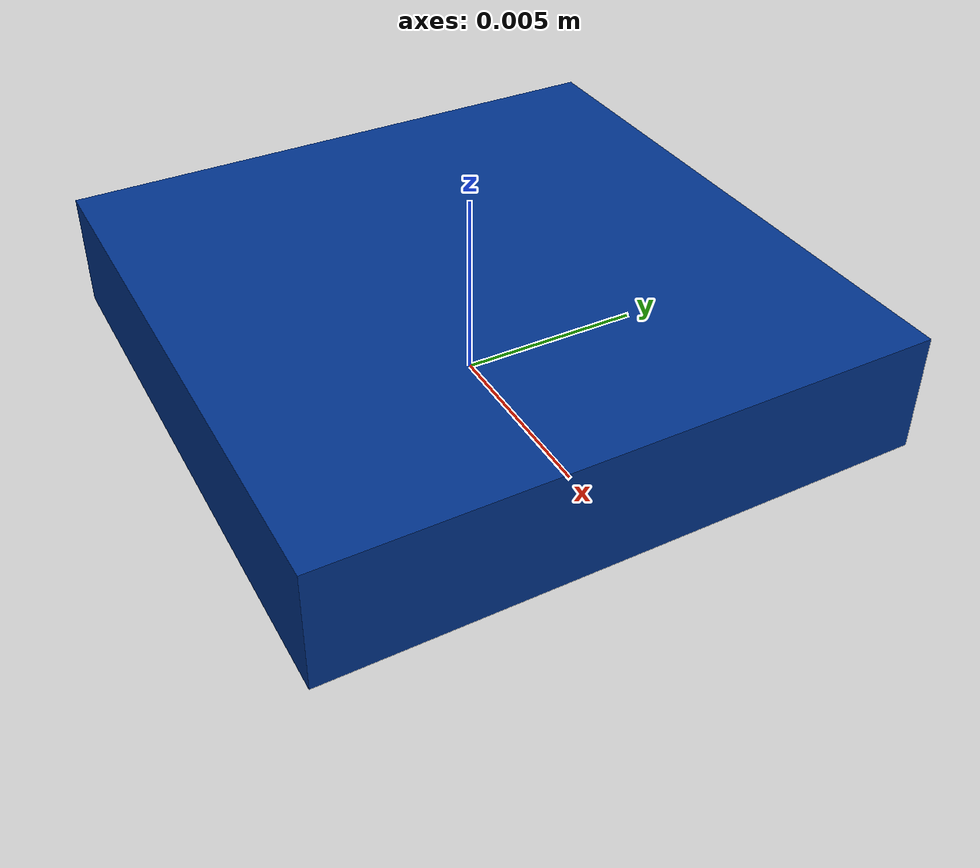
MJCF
<mujoco model="lego_tile_2x2">
  <compiler angle="radian"/>

  <default>
    <default class="lego_tile_2x2">
      <!-- density is tuned down from ABS's real ~1050 kg/m3 so the solid
           primitive body (no hollow underside) lands near a real piece's mass -->
      <geom type="box" material="lego_blue" density="500" friction="0.9 0.02 0.001"/>
    </default>
  </default>

  <asset>
    <material name="lego_blue" rgba="0.0 0.2 0.55 1"/>
  </asset>

  <worldbody>
    <body name="lego_tile_2x2" childclass="lego_tile_2x2">
      <freejoint name="lego_tile_2x2_freejoint"/>

      <!-- tile body: 2 studs long (x) x 2 studs wide (y) x 3.2mm tall (z) -->
      <!-- mass/inertia are left to MuJoCo, computed from geom volume x density above -->
      <geom name="lego_tile_2x2_body" size="0.0079 0.0079 0.0016" pos="0 0 0.0016"/>
    </body>
  </worldbody>
</mujoco>
